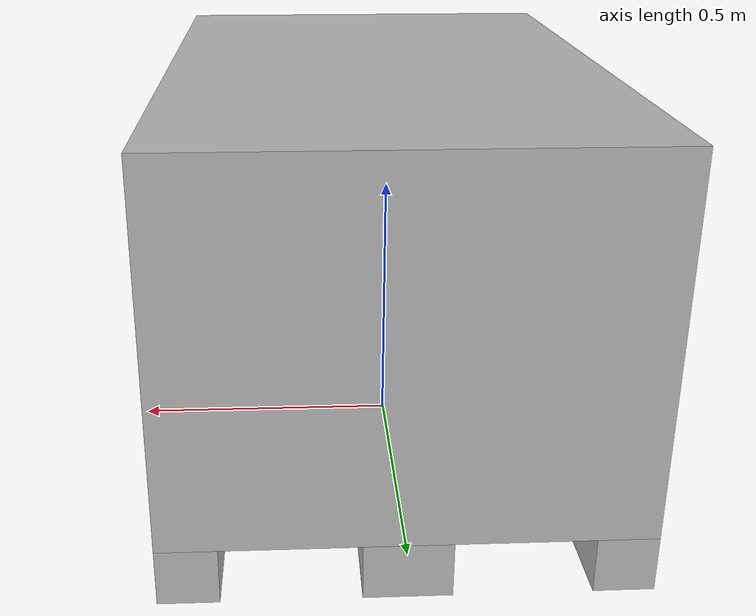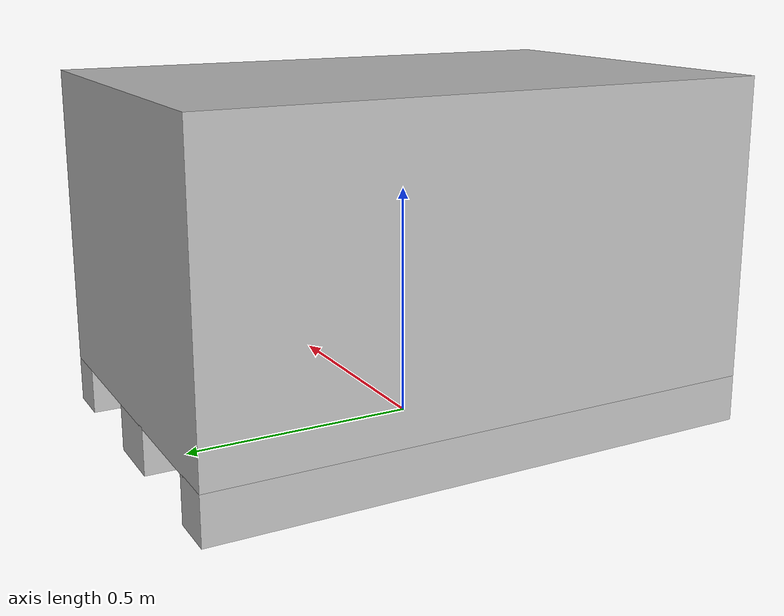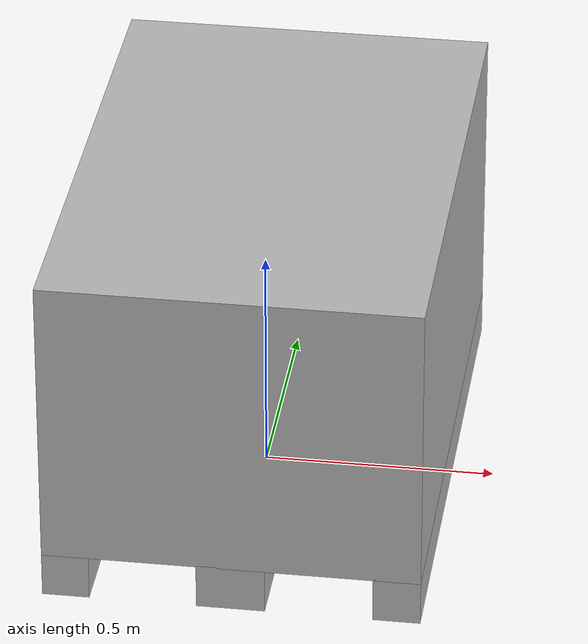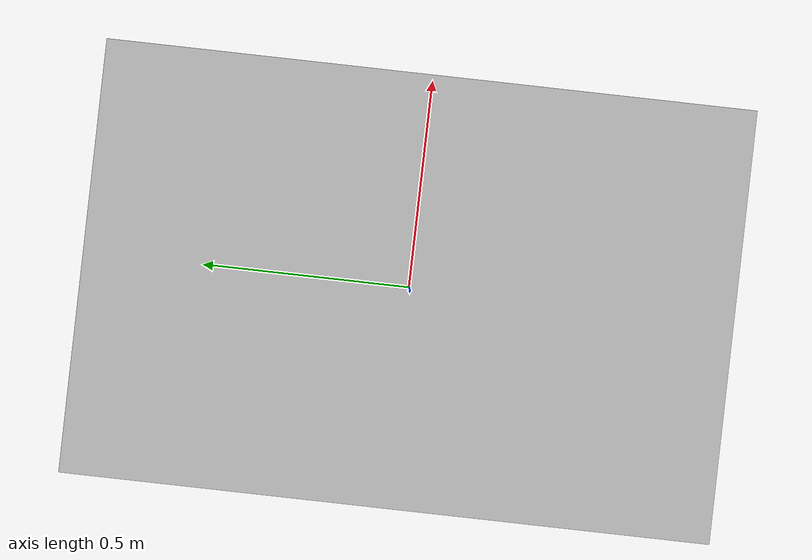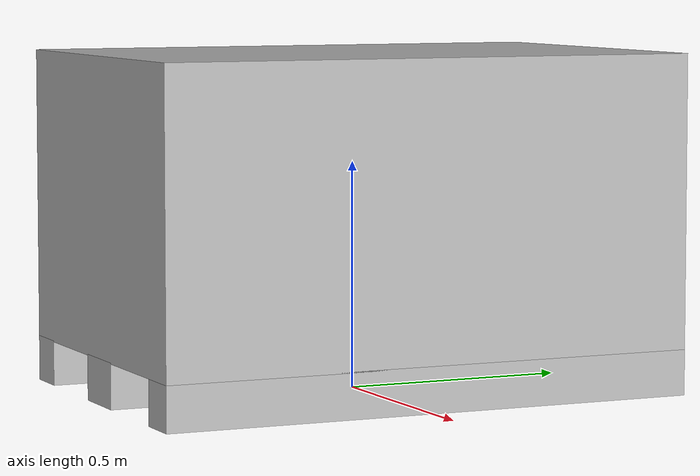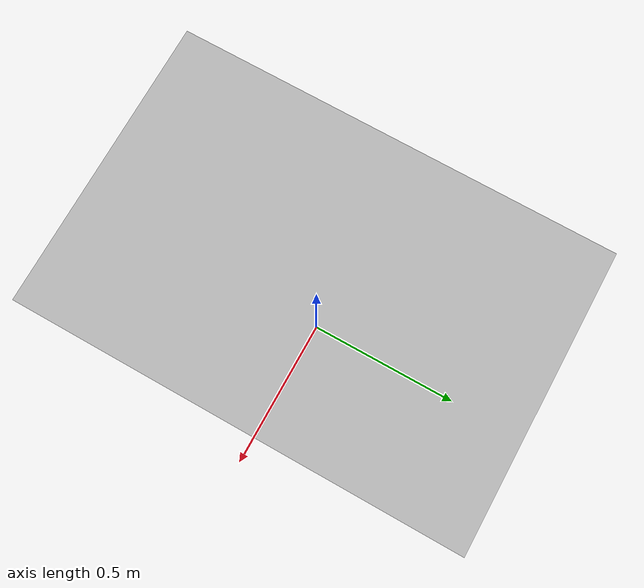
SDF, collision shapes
<?xml version="1.0" ?>
<sdf version="1.6">
  <model name="pallet">
    <static>0</static>
    <link name="link">
    <inertial>
          <pose>0 0 0.4 0 0 0</pose>
          <mass>10</mass>
          <inertia>
            <ixx>1.6563333334</ixx>
            <ixy>0</ixy>
            <ixz>0</ixz>
            <iyy>0.9896666666</iyy>
            <iyz>0</iyz>
            <izz>1.7333333334</izz>
          </inertia>
       </inertial>
      <visual name="visual">
        <geometry>
          <mesh>
            <uri>model://pallet/meshes/pallet.dae</uri>
          </mesh>
        </geometry>
      </visual>
      <collision name="collision-top">
        <pose>0.01 0.005 0.42 0 0 0</pose>
        <geometry>
          <box>
            <size>0.8 1.2 0.644</size>
          </box>
        </geometry>
      </collision>
      <collision name="collision-middle">
        <pose>0.01 0.005 0.0505 0 0 0</pose>
        <geometry>
          <box>
            <size>0.145 1.2 0.1</size>
          </box>
        </geometry>
      </collision>

      <collision name="collision-left">
        <pose>0.36 0.005 0.0505 0 0 0</pose>
        <geometry>
          <box>
            <size>0.1 1.2 0.1</size>
          </box>
        </geometry>
      </collision>

      <collision name="collision-right">
        <pose>-0.340 0.005 0.0505 0 0 0</pose>
        <geometry>
          <box>
            <size>0.1 1.2 0.1</size>
          </box>
        </geometry>
      </collision>

    </link>
  </model>
</sdf>
